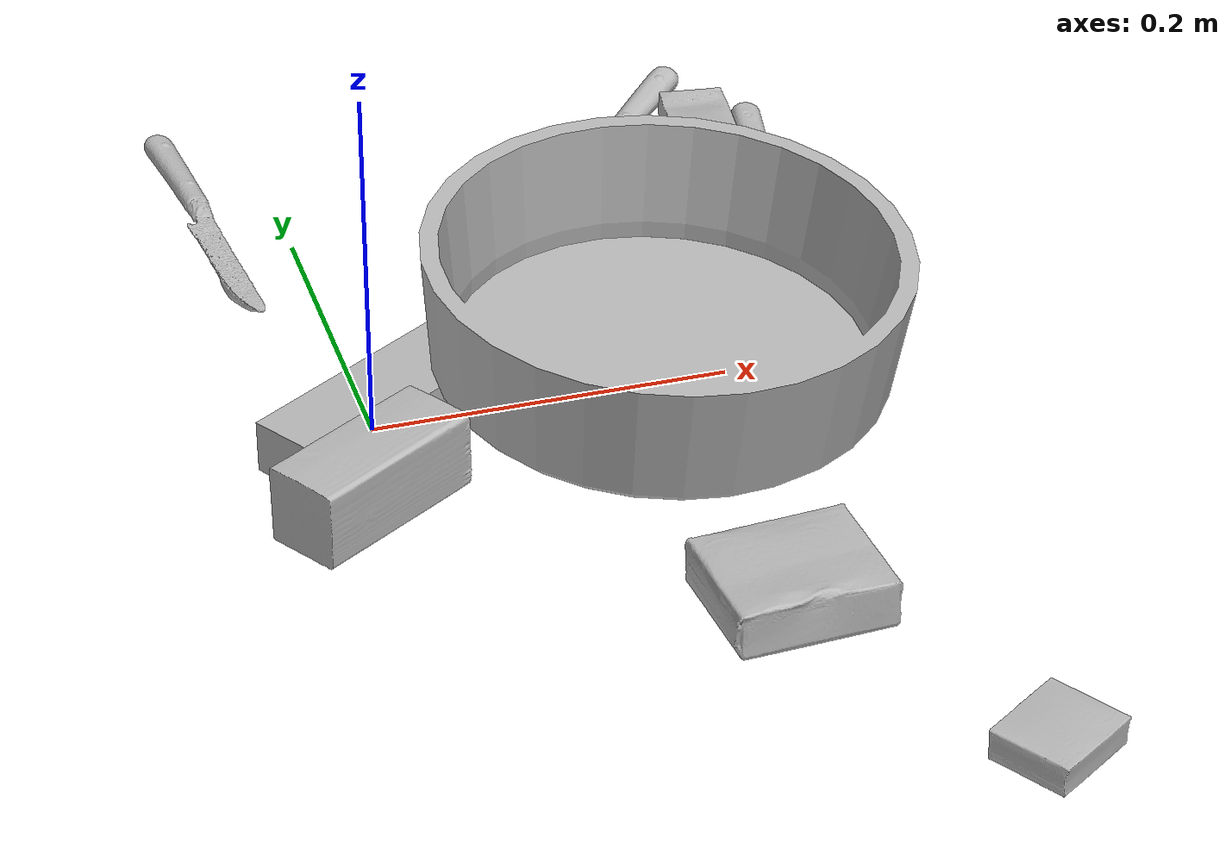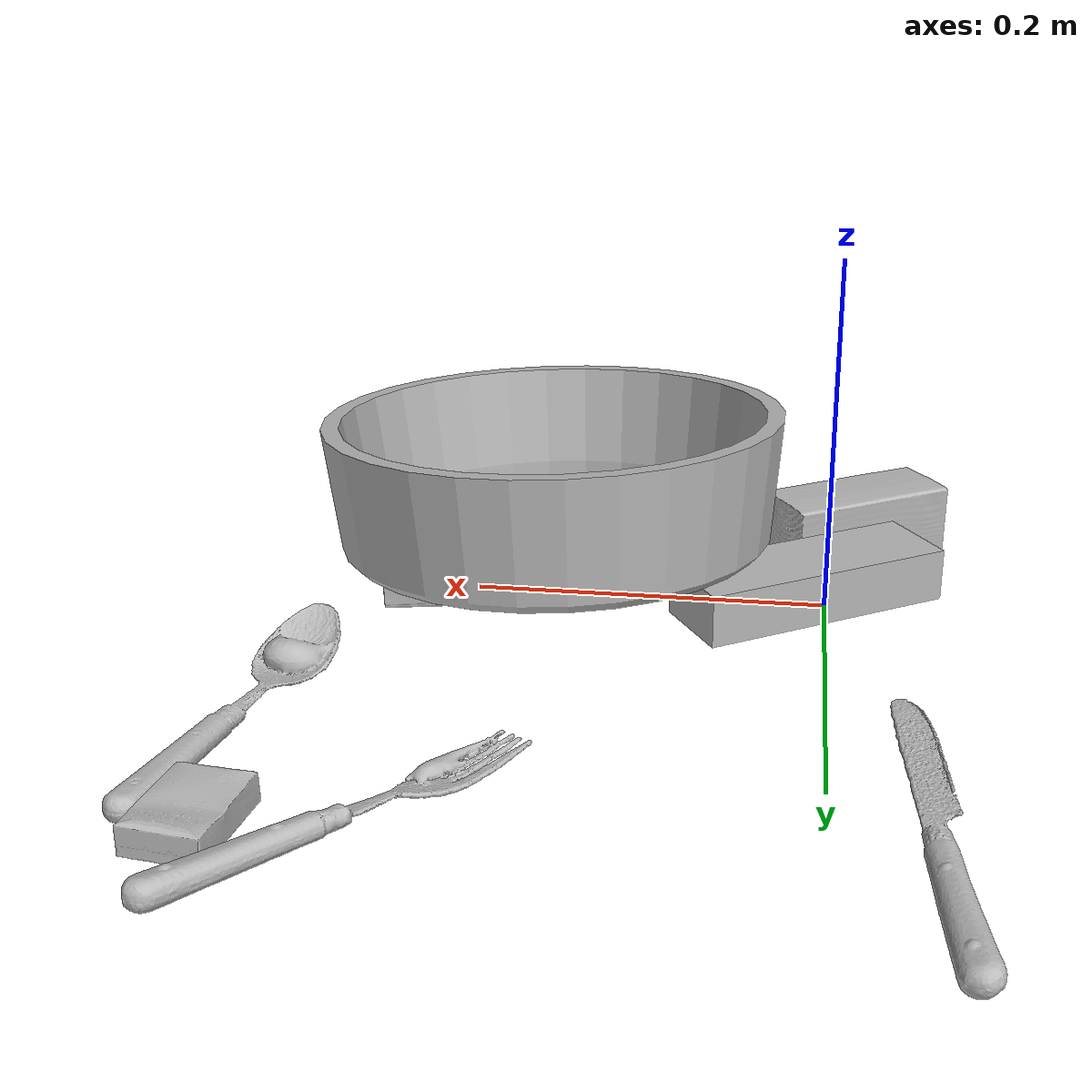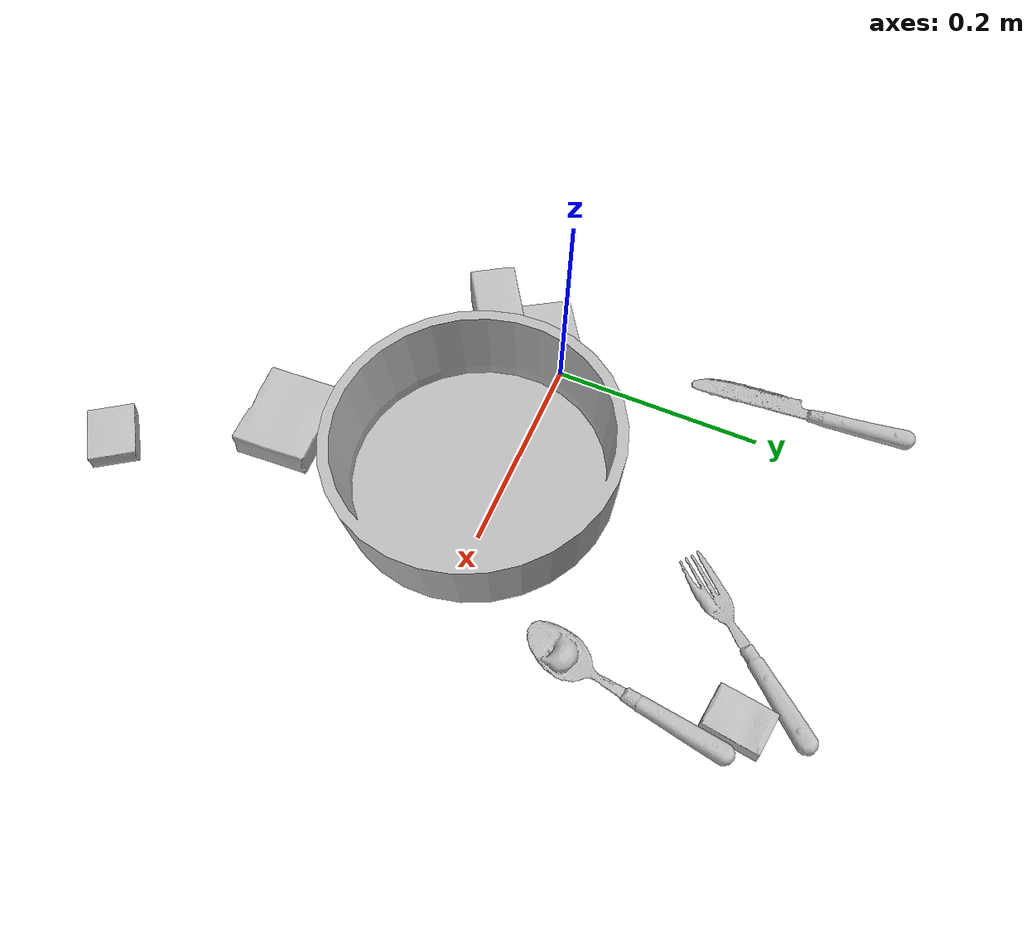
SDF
<sdf version="1.4">
  <world name="default">
    <light name="light1" type="point">
      <pose>0 0 1 0 0 0</pose>
      <diffuse>3 3 3 1</diffuse>
      <specular>3 3 3 1</specular>
    </light>
    <light name="light2" type="point">
      <pose>0 0.5 2 0 0 0</pose>
      <diffuse>1 1 1 1</diffuse>
      <specular>1 1 1 1</specular>
    </light>
    <light name="light3" type="point">
      <pose>0 0.5 2 0 0 0</pose>
      <diffuse>3 3 3 1</diffuse>
      <specular>3 3 3 1</specular>
    </light>
    <scene>
      <ambient>0.7 0.7 0.7</ambient>
    </scene>
    <model name="box11">
      <link name="link_box11">
        <collision name="default">
          <geometry>
            <mesh>
              <uri>model://sugar_box/collision_meshes/collision.obj</uri>
              <scale>0.5 0.5 0.5</scale>
            </mesh>
          </geometry>
          <surface>
            <friction>
              <ode>
                <mu>0.5</mu>
                <mu2>0.5</mu2>
              </ode>
            </friction>
          <contact>
        <ode>
            <max_vel>0</max_vel>
            <min_depth>0.0001</min_depth>
            <kp>1e8</kp>
        </ode>
    </contact></surface>
        </collision>
        <visual name="default">
          <geometry>
            <mesh>
              <uri>model://sugar_box/visual_meshes/visual.dae</uri>
              <scale>0.5 0.5 0.5</scale>
            </mesh>
          </geometry>
        </visual>
        <inertial>
          <mass>0.0727815181016922</mass>
          <pose>0.0005171863595023751 1.924554817378521e-05 -0.00018182402709499002 -0.0004046263004245651 0.001050663405794887 0.002615379021776999</pose>
          <inertia>
            <ixx>1.5160335e-05</ixx>
            <iyy>4.900132e-05</iyy>
            <izz>5.8660433e-05</izz>
            <ixy>0</ixy>
            <ixz>0</ixz>
            <iyz>0</iyz>
          </inertia>
        </inertial>
      </link>
      <pose>0.23279374837875366 -0.007111437618732452 0.011471453122794628 0.018715528335344234 -0.022802034255778914 1.7445323607794836</pose>
    </model>
    <model name="box12">
      <link name="link_box12">
        <collision name="default">
          <geometry>
            <mesh>
              <uri>model://gelatin_box/collision_meshes/collision.obj</uri>
              <scale>1.0 1.0 1.0</scale>
            </mesh>
          </geometry>
          <surface>
            <friction>
              <ode>
                <mu>0.5</mu>
                <mu2>0.5</mu2>
              </ode>
            </friction>
          <contact>
        <ode>
            <max_vel>0</max_vel>
            <min_depth>0.0001</min_depth>
            <kp>1e8</kp>
        </ode>
    </contact></surface>
        </collision>
        <visual name="default">
          <geometry>
            <mesh>
              <uri>model://gelatin_box/visual_meshes/visual.dae</uri>
              <scale>1.0 1.0 1.0</scale>
            </mesh>
          </geometry>
        </visual>
        <inertial>
          <mass>0.2761145234107971</mass>
          <pose>0.000431961816502735 0.00011156871187267825 -0.0003640321083366871 -0.0010503719804291966 -0.004755819155973465 0.01644055947187314</pose>
          <inertia>
            <ixx>0.00019491432</ixx>
            <iyy>0.00013922628</iyy>
            <izz>0.00029670302</izz>
            <ixy>0</ixy>
            <ixz>0</ixz>
            <iyz>0</iyz>
          </inertia>
        </inertial>
      </link>
      <pose>0.16364528238773346 -0.21094830334186554 0.015168312005698681 0.005596641521701507 -0.007303759992622785 -1.518023251505196</pose>
    </model>
    <model name="box13">
      <link name="link_box13">
        <collision name="default">
          <geometry>
            <mesh>
              <uri>model://jenga/collision_meshes/collision.obj</uri>
              <scale>1.0 1.0 1.0</scale>
            </mesh>
          </geometry>
          <surface>
            <friction>
              <ode>
                <mu>0.5</mu>
                <mu2>0.5</mu2>
              </ode>
            </friction>
          <contact>
        <ode>
            <max_vel>0</max_vel>
            <min_depth>0.0001</min_depth>
            <kp>1e8</kp>
        </ode>
    </contact></surface>
        </collision>
        <visual name="default">
          <geometry>
            <mesh>
              <uri>model://jenga/visual_meshes/visual.dae</uri>
              <scale>1.0 1.0 1.0</scale>
            </mesh>
          </geometry>
        </visual>
        <inertial>
          <mass>0.30891793966293335</mass>
          <pose>-2.502855807051674e-07 -0.0001025000965455547 -4.0923401684267446e-05 0.0 -7.34215461761844e-07 0.0</pose>
          <inertia>
            <ixx>8.548509e-05</ixx>
            <iyy>0.00057924463</iyy>
            <izz>0.0006183929</izz>
            <ixy>0</ixy>
            <ixz>0</ixz>
            <iyz>0</iyz>
          </inertia>
        </inertial>
      </link>
      <pose>0.010242619551718235 0.00023198328563012183 0.015002555213868618 -0.00026527231286369675 -2.3343316594540826e-05 -2.5730807944648797</pose>
    </model>
    <model name="box21">
      <link name="link_box21">
        <collision name="default">
          <geometry>
            <mesh>
              <uri>model://pudding_box/collision_meshes/collision.obj</uri>
              <scale>0.5 0.5 0.5</scale>
            </mesh>
          </geometry>
          <surface>
            <friction>
              <ode>
                <mu>0.5</mu>
                <mu2>0.5</mu2>
              </ode>
            </friction>
          <contact>
        <ode>
            <max_vel>0</max_vel>
            <min_depth>0.0001</min_depth>
            <kp>1e8</kp>
        </ode>
    </contact></surface>
        </collision>
        <visual name="default">
          <geometry>
            <mesh>
              <uri>model://pudding_box/visual_meshes/visual.dae</uri>
              <scale>0.5 0.5 0.5</scale>
            </mesh>
          </geometry>
        </visual>
        <inertial>
          <mass>0.049023520201444626</mass>
          <pose>0.0002447411243338138 0.00040339428232982755 -0.0002594413817860186 0.005213100395594636 -0.006603798704538055 0.020079825164231697</pose>
          <inertia>
            <ixx>1.3854642e-05</ixx>
            <iyy>9.321502e-06</iyy>
            <izz>2.046e-05</izz>
            <ixy>0</ixy>
            <ixz>0</ixz>
            <iyz>0</iyz>
          </inertia>
        </inertial>
      </link>
      <pose>0.2444361448287964 -0.35560527443885803 0.009862901642918587 0.02234850869808393 -0.01139173828505766 2.1612861001464942</pose>
    </model>
    <model name="box22">
      <link name="link_box22">
        <collision name="default">
          <geometry>
            <mesh>
              <uri>model://wood_block/collision_meshes/collision.obj</uri>
              <scale>0.5 0.5 0.5</scale>
            </mesh>
          </geometry>
          <surface>
            <friction>
              <ode>
                <mu>0.5</mu>
                <mu2>0.5</mu2>
              </ode>
            </friction>
          <contact>
        <ode>
            <max_vel>0</max_vel>
            <min_depth>0.0001</min_depth>
            <kp>1e8</kp>
        </ode>
    </contact></surface>
        </collision>
        <visual name="default">
          <geometry>
            <mesh>
              <uri>model://wood_block/visual_meshes/visual.dae</uri>
              <scale>0.5 0.5 0.5</scale>
            </mesh>
          </geometry>
        </visual>
        <inertial>
          <mass>0.3074011206626892</mass>
          <pose>-2.9066577553749084e-06 -0.000285404734313488 0.00013204291462898254 -0.05220975528717129 -0.005192695583989696 -0.0068613793241849635</pose>
          <inertia>
            <ixx>0.00010283729</ixx>
            <iyy>0.00032486304</iyy>
            <izz>0.0003236479</izz>
            <ixy>0</ixy>
            <ixz>0</ixz>
            <iyz>0</iyz>
          </inertia>
        </inertial>
      </link>
      <pose>-0.017290223389863968 -0.07351306825876236 0.0226292684674263 -0.005208378847179258 0.005718729222129349 0.562983477114543</pose>
    </model>
    <model name="box23">
      <link name="link_box23">
        <collision name="default">
          <geometry>
            <mesh>
              <uri>model://cracker_box/collision_meshes/collision.obj</uri>
              <scale>0.25 0.25 0.25</scale>
            </mesh>
          </geometry>
          <surface>
            <friction>
              <ode>
                <mu>0.5</mu>
                <mu2>0.5</mu2>
              </ode>
            </friction>
          <contact>
        <ode>
            <max_vel>0</max_vel>
            <min_depth>0.0001</min_depth>
            <kp>1e8</kp>
        </ode>
    </contact></surface>
        </collision>
        <visual name="default">
          <geometry>
            <mesh>
              <uri>model://cracker_box/visual_meshes/visual.dae</uri>
              <scale>0.25 0.25 0.25</scale>
            </mesh>
          </geometry>
        </visual>
        <inertial>
          <mass>0.04833315312862396</mass>
          <pose>0.00023660357692278922 6.358561950037256e-05 -0.00042573834070935845 -0.0003162077466025917 -0.011106490531569568 0.002546795235651085</pose>
          <inertia>
            <ixx>7.683624e-06</ixx>
            <iyy>1.268717e-05</iyy>
            <izz>1.8105757e-05</izz>
            <ixy>0</ixy>
            <ixz>0</ixz>
            <iyz>0</iyz>
          </inertia>
        </inertial>
      </link>
      <pose>0.2720321714878082 0.2654504179954529 0.00909598171710968 -0.014063221300254227 -0.005014515335812762 -1.7033238440725562</pose>
    </model>
    <model name="plate1">
      <link name="link_plate1">
        <collision name="default">
          <geometry>
            <mesh>
              <uri>model://pan_tefal/collision_meshes/collision.obj</uri>
              <scale>1.0 1.0 1.0</scale>
            </mesh>
          </geometry>
          <surface>
            <friction>
              <ode>
                <mu>0.5</mu>
                <mu2>0.5</mu2>
              </ode>
            </friction>
          <contact>
        <ode>
            <max_vel>0</max_vel>
            <min_depth>0.0001</min_depth>
            <kp>1e8</kp>
        </ode>
    </contact></surface>
        </collision>
        <visual name="default">
          <geometry>
            <mesh>
              <uri>model://pan_tefal/visual_meshes/visual.dae</uri>
              <scale>1.0 1.0 1.0</scale>
            </mesh>
          </geometry>
        </visual>
        <inertial>
          <mass>1.5598481893539429</mass>
          <pose>-0.0001800245518097654 3.279111842857674e-05 -0.008514934219419956 0.0008190275877392404 -0.0003301333888364595 -0.33185859522575717</pose>
          <inertia>
            <ixx>0.010767555</ixx>
            <iyy>0.010836974</iyy>
            <izz>0.019820997</izz>
            <ixy>0</ixy>
            <ixz>0</ixz>
            <iyz>0</iyz>
          </inertia>
        </inertial>
      </link>
      <pose>0.15779435634613037 -0.020284248515963554 0.06315232068300247 0.06533042426563898 -0.033206300649796766 0.9354789937486785</pose>
    </model>
    <model name="silverware1">
      <link name="link_silverware1">
        <collision name="default">
          <geometry>
            <mesh>
              <uri>model://fork/collision_meshes/collision.obj</uri>
              <scale>1.0 1.0 1.0</scale>
            </mesh>
          </geometry>
          <surface>
            <friction>
              <ode>
                <mu>0.5</mu>
                <mu2>0.5</mu2>
              </ode>
            </friction>
          <contact>
        <ode>
            <max_vel>0</max_vel>
            <min_depth>0.0001</min_depth>
            <kp>1e8</kp>
        </ode>
    </contact></surface>
        </collision>
        <visual name="default">
          <geometry>
            <mesh>
              <uri>model://fork/visual_meshes/visual.dae</uri>
              <scale>1.0 1.0 1.0</scale>
            </mesh>
          </geometry>
        </visual>
        <inertial>
          <mass>0.024598950520157814</mass>
          <pose>-0.029570043087005615 0.0004658824182115495 0.0003218861820641905 -0.013552328184634912 -0.010977839901754499 0.014453902526732686</pose>
          <inertia>
            <ixx>8.623325e-07</ixx>
            <iyy>6.422079e-05</iyy>
            <izz>6.460647e-05</izz>
            <ixy>0</ixy>
            <ixz>0</ixz>
            <iyz>0</iyz>
          </inertia>
        </inertial>
      </link>
      <pose>0.2084622085094452 0.25450021028518677 0.00536683015525341 -0.05094374220114827 0.04395309254854309 -2.2970082519006816</pose>
    </model>
    <model name="silverware2">
      <link name="link_silverware2">
        <collision name="default">
          <geometry>
            <mesh>
              <uri>model://knife/collision_meshes/collision.obj</uri>
              <scale>1.0 1.0 1.0</scale>
            </mesh>
          </geometry>
          <surface>
            <friction>
              <ode>
                <mu>0.5</mu>
                <mu2>0.5</mu2>
              </ode>
            </friction>
          <contact>
        <ode>
            <max_vel>0</max_vel>
            <min_depth>0.0001</min_depth>
            <kp>1e8</kp>
        </ode>
    </contact></surface>
        </collision>
        <visual name="default">
          <geometry>
            <mesh>
              <uri>model://knife/visual_meshes/visual.dae</uri>
              <scale>1.0 1.0 1.0</scale>
            </mesh>
          </geometry>
        </visual>
        <inertial>
          <mass>0.03473280370235443</mass>
          <pose>-0.02378525584936142 0.0015275126788765192 5.062021955382079e-05 0.0730594717304457 0.017248417183571667 -0.007409821049452296</pose>
          <inertia>
            <ixx>9.858578e-07</ixx>
            <iyy>0.00013343782</iyy>
            <izz>0.00013375531</izz>
            <ixy>0</ixy>
            <ixz>0</ixz>
            <iyz>0</iyz>
          </inertia>
        </inertial>
      </link>
      <pose>-0.04750948026776314 0.2293623387813568 0.008136836811900139 -0.2817347453504836 -0.008871781939484505 -1.4831604344857388</pose>
    </model>
    <model name="silverware3">
      <link name="link_silverware3">
        <collision name="default">
          <geometry>
            <mesh>
              <uri>model://spoon/collision_meshes/collision.obj</uri>
              <scale>1.0 1.0 1.0</scale>
            </mesh>
          </geometry>
          <surface>
            <friction>
              <ode>
                <mu>0.5</mu>
                <mu2>0.5</mu2>
              </ode>
            </friction>
          <contact>
        <ode>
            <max_vel>0</max_vel>
            <min_depth>0.0001</min_depth>
            <kp>1e8</kp>
        </ode>
    </contact></surface>
        </collision>
        <visual name="default">
          <geometry>
            <mesh>
              <uri>model://spoon/visual_meshes/visual.dae</uri>
              <scale>1.0 1.0 1.0</scale>
            </mesh>
          </geometry>
        </visual>
        <inertial>
          <mass>0.02618301659822464</mass>
          <pose>-0.0055263168178498745 -0.00160341733135283 -0.0007271658978424966 0.035216710647368914 -0.039065848798616645 0.0061506127138874515</pose>
          <inertia>
            <ixx>1.4563418e-06</ixx>
            <iyy>9.96255e-05</iyy>
            <izz>0.000100343714</izz>
            <ixy>0</ixy>
            <ixz>0</ixz>
            <iyz>0</iyz>
          </inertia>
        </inertial>
      </link>
      <pose>0.2884606122970581 0.17401057481765747 0.008385262452065945 0.006731780469169905 0.026892994109600304 -1.7522399051288626</pose>
    </model>
  <physics type="ode">
      <max_contacts>50</max_contacts>
      <ode>
        <solver>
          <type>quick</type>
          <iters>75</iters>
        </solver>
        <constraints>
          <contact_max_correcting_vel>0</contact_max_correcting_vel>
          <contact_surface_layer>0</contact_surface_layer>
        </constraints>
      </ode>
    </physics></world>
</sdf>
